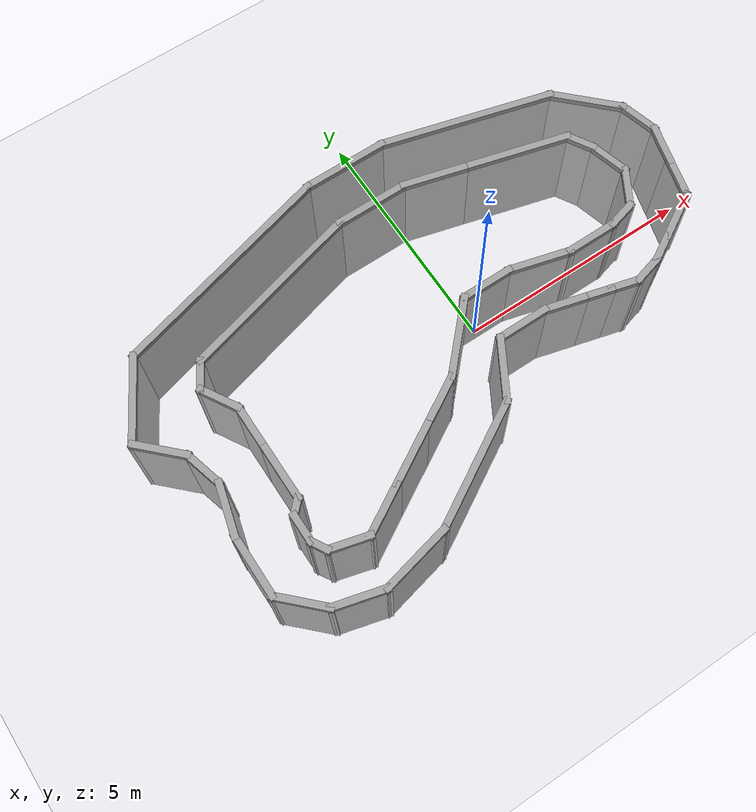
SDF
<sdf version="1.7">
 <world name="default">
  <light name="sun" type="directional">
   <pose>0 0 10 0 -0 0</pose>
   <diffuse>0.8 0.8 0.8 1</diffuse>
   <specular>0.2 0.2 0.2 1</specular>
   <attenuation>
    <range>1000</range>
    <constant>0.9</constant>
    <linear>0.01</linear>
    <quadratic>0.001</quadratic>
   </attenuation>
   <direction>-0.5 0.1 -0.9</direction>
   <spot><inner_angle>0</inner_angle><outer_angle>0</outer_angle><falloff>0</falloff></spot>
  </light>
  <model name="ground_plane">
   <static>1</static>
   <link name="link">
    <collision name="collision">
     <geometry><plane><normal>0 0 1</normal><size>100 100</size></plane></geometry>
     <surface>
      <contact><collide_bitmask>65535</collide_bitmask></contact>
      <friction><ode><mu>100</mu><mu2>50</mu2></ode></friction>
     </surface>
    </collision>
    <visual name="visual">
     <cast_shadows>0</cast_shadows>
     <geometry><plane><normal>0 0 1</normal><size>100 100</size></plane></geometry>
     <material>
      <script><uri>file://media/materials/scripts/gazebo.material</uri><name>Gazebo/Grey</name></script>
     </material>
    </visual>
   </link>
  </model>
  <gravity>0 0 -9.8</gravity>
  <magnetic_field>6e-06 2.3e-05 -4.2e-05</magnetic_field>
  <atmosphere type="adiabatic"/>
  <physics type="ode">
   <max_step_size>0.001</max_step_size>
   <real_time_factor>1</real_time_factor>
   <real_time_update_rate>1000</real_time_update_rate>
  </physics>
  <scene><ambient>0.4 0.4 0.4 1</ambient><background>0.7 0.7 0.7 1</background><shadows>1</shadows></scene>
  <spherical_coordinates>
   <surface_model>EARTH_WGS84</surface_model>
   <latitude_deg>0</latitude_deg>
   <longitude_deg>0</longitude_deg>
   <elevation>0</elevation>
   <heading_deg>0</heading_deg>
  </spherical_coordinates>
  <model name="track_ver4">
   <pose>-0.487715 0.640623 -2.37228 0 -0 0</pose>
   <link name="Wall_0">
    <collision name="Wall_0_Collision">
     <geometry><box><size>3 0.15 2.5</size></box></geometry>
     <pose>0 0 1.25 0 -0 0</pose>
    </collision>
    <visual name="Wall_0_Visual">
     <pose>0 0 1.25 0 -0 0</pose>
     <geometry><box><size>3 0.15 2.5</size></box></geometry>
     <material>
      <script><uri>file://media/materials/scripts/gazebo.material</uri><name>Gazebo/Grey</name></script>
      <ambient>1 1 1 1</ambient>
     </material>
     <meta><layer>0</layer></meta>
    </visual>
    <pose>-1.08822 -2.94927 0 0 -0 0.523599</pose>
   </link>
   <link name="Wall_1">
    <collision name="Wall_1_Collision">
     <geometry><box><size>1.5 0.15 2.5</size></box></geometry>
     <pose>0 0 1.25 0 -0 0</pose>
    </collision>
    <visual name="Wall_1_Visual">
     <pose>0 0 1.25 0 -0 0</pose>
     <geometry><box><size>1.5 0.15 2.5</size></box></geometry>
     <material>
      <script><uri>file://media/materials/scripts/gazebo.material</uri><name>Gazebo/Grey</name></script>
      <ambient>1 1 1 1</ambient>
     </material>
     <meta><layer>0</layer></meta>
    </visual>
    <pose>0.483368 -1.65221 0 0 -0 1.0472</pose>
   </link>
   <link name="Wall_10">
    <collision name="Wall_10_Collision">
     <geometry><box><size>1 0.15 2.5</size></box></geometry>
     <pose>0 0 1.25 0 -0 0</pose>
    </collision>
    <visual name="Wall_10_Visual">
     <pose>0 0 1.25 0 -0 0</pose>
     <geometry><box><size>1 0.15 2.5</size></box></geometry>
     <material>
      <script><uri>file://media/materials/scripts/gazebo.material</uri><name>Gazebo/Grey</name></script>
      <ambient>1 1 1 1</ambient>
     </material>
     <meta><layer>0</layer></meta>
    </visual>
    <pose>6.28281 0.638628 0 0 -0 1.309</pose>
   </link>
   <link name="Wall_11">
    <collision name="Wall_11_Collision">
     <geometry><box><size>1 0.15 2.5</size></box></geometry>
     <pose>0 0 1.25 0 -0 0</pose>
    </collision>
    <visual name="Wall_11_Visual">
     <pose>0 0 1.25 0 -0 0</pose>
     <geometry><box><size>1 0.15 2.5</size></box></geometry>
     <material>
      <script><uri>file://media/materials/scripts/gazebo.material</uri><name>Gazebo/Grey</name></script>
      <ambient>1 1 1 1</ambient>
     </material>
     <meta><layer>0</layer></meta>
    </visual>
    <pose>6.28281 1.45966 0 0 -0 1.8326</pose>
   </link>
   <link name="Wall_12">
    <collision name="Wall_12_Collision">
     <geometry><box><size>1.75 0.15 2.5</size></box></geometry>
     <pose>0 0 1.25 0 -0 0</pose>
    </collision>
    <visual name="Wall_12_Visual">
     <pose>0 0 1.25 0 -0 0</pose>
     <geometry><box><size>1.75 0.15 2.5</size></box></geometry>
     <material>
      <script><uri>file://media/materials/scripts/gazebo.material</uri><name>Gazebo/Grey</name></script>
      <ambient>1 1 1 1</ambient>
     </material>
     <meta><layer>0</layer></meta>
    </visual>
    <pose>5.60712 2.43587 0 0 -0 2.35619</pose>
   </link>
   <link name="Wall_13">
    <collision name="Wall_13_Collision">
     <geometry><box><size>4 0.15 2.5</size></box></geometry>
     <pose>0 0 1.25 0 -0 0</pose>
    </collision>
    <visual name="Wall_13_Visual">
     <pose>0 0 1.25 0 -0 0</pose>
     <geometry><box><size>4 0.15 2.5</size></box></geometry>
     <material>
      <script><uri>file://media/materials/scripts/gazebo.material</uri><name>Gazebo/Grey</name></script>
      <ambient>1 1 1 1</ambient>
     </material>
     <meta><layer>0</layer></meta>
    </visual>
    <pose>3.18203 3.49978 0 0 -0 2.87979</pose>
   </link>
   <link name="Wall_14">
    <collision name="Wall_14_Collision">
     <geometry><box><size>2 0.15 2.5</size></box></geometry>
     <pose>0 0 1.25 0 -0 0</pose>
    </collision>
    <visual name="Wall_14_Visual">
     <pose>0 0 1.25 0 -0 0</pose>
     <geometry><box><size>2 0.15 2.5</size></box></geometry>
     <material>
      <script><uri>file://media/materials/scripts/gazebo.material</uri><name>Gazebo/Grey</name></script>
      <ambient>1 1 1 1</ambient>
     </material>
     <meta><layer>0</layer></meta>
    </visual>
    <pose>0.397625 3.99801 0 0 -0 3.14159</pose>
   </link>
   <link name="Wall_15">
    <collision name="Wall_15_Collision">
     <geometry><box><size>5.25 0.15 2.5</size></box></geometry>
     <pose>0 0 1.25 0 -0 0</pose>
    </collision>
    <visual name="Wall_15_Visual">
     <pose>0 0 1.25 0 -0 0</pose>
     <geometry><box><size>5.25 0.15 2.5</size></box></geometry>
     <material>
      <script><uri>file://media/materials/scripts/gazebo.material</uri><name>Gazebo/Grey</name></script>
      <ambient>1 1 1 1</ambient>
     </material>
     <meta><layer>0</layer></meta>
    </visual>
    <pose>-2.99049 3.33802 0 0 -0 -2.87979</pose>
   </link>
   <link name="Wall_16">
    <collision name="Wall_16_Collision">
     <geometry><box><size>2 0.15 2.5</size></box></geometry>
     <pose>0 0 1.25 0 -0 0</pose>
    </collision>
    <visual name="Wall_16_Visual">
     <pose>0 0 1.25 0 -0 0</pose>
     <geometry><box><size>2 0.15 2.5</size></box></geometry>
     <material>
      <script><uri>file://media/materials/scripts/gazebo.material</uri><name>Gazebo/Grey</name></script>
      <ambient>1 1 1 1</ambient>
     </material>
     <meta><layer>0</layer></meta>
    </visual>
    <pose>-5.9161 1.87696 0 0 -0 -2.0944</pose>
   </link>
   <link name="Wall_17">
    <collision name="Wall_17_Collision">
     <geometry><box><size>1.25 0.15 2.5</size></box></geometry>
     <pose>0 0 1.25 0 -0 0</pose>
    </collision>
    <visual name="Wall_17_Visual">
     <pose>0 0 1.25 0 -0 0</pose>
     <geometry><box><size>1.25 0.15 2.5</size></box></geometry>
     <material>
      <script><uri>file://media/materials/scripts/gazebo.material</uri><name>Gazebo/Grey</name></script>
      <ambient>1 1 1 1</ambient>
     </material>
     <meta><layer>0</layer></meta>
    </visual>
    <pose>-5.98969 0.686975 0 0 -0 -0.785398</pose>
   </link>
   <link name="Wall_18">
    <collision name="Wall_18_Collision">
     <geometry><box><size>1 0.15 2.5</size></box></geometry>
     <pose>0 0 1.25 0 -0 0</pose>
    </collision>
    <visual name="Wall_18_Visual">
     <pose>0 0 1.25 0 -0 0</pose>
     <geometry><box><size>1 0.15 2.5</size></box></geometry>
     <material>
      <script><uri>file://media/materials/scripts/gazebo.material</uri><name>Gazebo/Grey</name></script>
      <ambient>1 1 1 1</ambient>
     </material>
     <meta><layer>0</layer></meta>
    </visual>
    <pose>-5.49078 -0.112452 0 0 -0 -1.309</pose>
   </link>
   <link name="Wall_19">
    <collision name="Wall_19_Collision">
     <geometry><box><size>1.25 0.15 2.5</size></box></geometry>
     <pose>0 0 1.25 0 -0 0</pose>
    </collision>
    <visual name="Wall_19_Visual">
     <pose>0 0 1.25 0 -0 0</pose>
     <geometry><box><size>1.25 0.15 2.5</size></box></geometry>
     <material>
      <script><uri>file://media/materials/scripts/gazebo.material</uri><name>Gazebo/Grey</name></script>
      <ambient>1 1 1 1</ambient>
     </material>
     <meta><layer>0</layer></meta>
    </visual>
    <pose>-5.52313 -1.05423 0 0 -0 -1.8326</pose>
   </link>
   <link name="Wall_2">
    <collision name="Wall_2_Collision">
     <geometry><box><size>1.25 0.15 2.5</size></box></geometry>
     <pose>0 0 1.25 0 -0 0</pose>
    </collision>
    <visual name="Wall_2_Visual">
     <pose>0 0 1.25 0 -0 0</pose>
     <geometry><box><size>1.25 0.15 2.5</size></box></geometry>
     <material>
      <script><uri>file://media/materials/scripts/gazebo.material</uri><name>Gazebo/Grey</name></script>
      <ambient>1 1 1 1</ambient>
     </material>
     <meta><layer>0</layer></meta>
    </visual>
    <pose>1.37087 -1.06764 0 0 -0 0</pose>
   </link>
   <link name="Wall_20">
    <collision name="Wall_20_Collision">
     <geometry><box><size>1.5 0.15 2.5</size></box></geometry>
     <pose>0 0 1.25 0 -0 0</pose>
    </collision>
    <visual name="Wall_20_Visual">
     <pose>0 0 1.25 0 -0 0</pose>
     <geometry><box><size>1.5 0.15 2.5</size></box></geometry>
     <material>
      <script><uri>file://media/materials/scripts/gazebo.material</uri><name>Gazebo/Grey</name></script>
      <ambient>1 1 1 1</ambient>
     </material>
     <meta><layer>0</layer></meta>
    </visual>
    <pose>-5.66548 -2.26049 0 0 -0 -1.5708</pose>
   </link>
   <link name="Wall_21">
    <collision name="Wall_21_Collision">
     <geometry><box><size>1.25 0.15 2.5</size></box></geometry>
     <pose>0 0 1.25 0 -0 0</pose>
    </collision>
    <visual name="Wall_21_Visual">
     <pose>0 0 1.25 0 -0 0</pose>
     <geometry><box><size>1.25 0.15 2.5</size></box></geometry>
     <material>
      <script><uri>file://media/materials/scripts/gazebo.material</uri><name>Gazebo/Grey</name></script>
      <ambient>1 1 1 1</ambient>
     </material>
     <meta><layer>0</layer></meta>
    </visual>
    <pose>-5.27658 -3.3244 0 0 -0 -0.785398</pose>
   </link>
   <link name="Wall_22">
    <collision name="Wall_22_Collision">
     <geometry><box><size>1.25 0.15 2.5</size></box></geometry>
     <pose>0 0 1.25 0 -0 0</pose>
    </collision>
    <visual name="Wall_22_Visual">
     <pose>0 0 1.25 0 -0 0</pose>
     <geometry><box><size>1.25 0.15 2.5</size></box></geometry>
     <material>
      <script><uri>file://media/materials/scripts/gazebo.material</uri><name>Gazebo/Grey</name></script>
      <ambient>1 1 1 1</ambient>
     </material>
     <meta><layer>0</layer></meta>
    </visual>
    <pose>-4.35641 -3.85566 0 0 -0 -0.261799</pose>
   </link>
   <link name="Wall_23">
    <collision name="Wall_23_Collision">
     <geometry><box><size>1.69 0.15 2.5</size></box></geometry>
     <pose>0 0 1.25 0 -0 0</pose>
    </collision>
    <visual name="Wall_23_Visual">
     <pose>0 0 1.25 0 -0 0</pose>
     <geometry><box><size>1.69 0.15 2.5</size></box></geometry>
     <material>
      <script><uri>file://media/materials/scripts/gazebo.material</uri><name>Gazebo/Grey</name></script>
      <ambient>1 1 1 1</ambient>
     </material>
     <meta><layer>0</layer></meta>
    </visual>
    <pose>-3.07373 -3.82989 0 0 -0 0.220107</pose>
   </link>
   <link name="Wall_26">
    <collision name="Wall_26_Collision">
     <geometry><box><size>1.25 0.15 2.5</size></box></geometry>
     <pose>0 0 1.25 0 -0 0</pose>
    </collision>
    <visual name="Wall_26_Visual">
     <pose>0 0 1.25 0 -0 0</pose>
     <geometry><box><size>1.25 0.15 2.5</size></box></geometry>
     <material>
      <script><uri>file://media/materials/scripts/gazebo.material</uri><name>Gazebo/Grey</name></script>
      <ambient>1 1 1 1</ambient>
     </material>
     <meta><layer>0</layer></meta>
    </visual>
    <pose>1.28599 0.059877 0 0 -0 0</pose>
   </link>
   <link name="Wall_27">
    <collision name="Wall_27_Collision">
     <geometry><box><size>1.5 0.15 2.5</size></box></geometry>
     <pose>0 0 1.25 0 -0 0</pose>
    </collision>
    <visual name="Wall_27_Visual">
     <pose>0 0 1.25 0 -0 0</pose>
     <geometry><box><size>1.5 0.15 2.5</size></box></geometry>
     <material>
      <script><uri>file://media/materials/scripts/gazebo.material</uri><name>Gazebo/Grey</name></script>
      <ambient>1 1 1 1</ambient>
     </material>
     <meta><layer>0</layer></meta>
    </visual>
    <pose>2.48799 -0.114825 0 0 -0 -0.261799</pose>
   </link>
   <link name="Wall_28">
    <collision name="Wall_28_Collision">
     <geometry><box><size>1.25 0.15 2.5</size></box></geometry>
     <pose>0 0 1.25 0 -0 0</pose>
    </collision>
    <visual name="Wall_28_Visual">
     <pose>0 0 1.25 0 -0 0</pose>
     <geometry><box><size>1.25 0.15 2.5</size></box></geometry>
     <material>
      <script><uri>file://media/materials/scripts/gazebo.material</uri><name>Gazebo/Grey</name></script>
      <ambient>1 1 1 1</ambient>
     </material>
     <meta><layer>0</layer></meta>
    </visual>
    <pose>3.68999 -0.289528 0 0 -0 0</pose>
   </link>
   <link name="Wall_29">
    <collision name="Wall_29_Collision">
     <geometry><box><size>0.75 0.15 2.5</size></box></geometry>
     <pose>0 0 1.25 0 -0 0</pose>
    </collision>
    <visual name="Wall_29_Visual">
     <pose>0 0 1.25 0 -0 0</pose>
     <geometry><box><size>0.75 0.15 2.5</size></box></geometry>
     <material>
      <script><uri>file://media/materials/scripts/gazebo.material</uri><name>Gazebo/Grey</name></script>
      <ambient>1 1 1 1</ambient>
     </material>
     <meta><layer>0</layer></meta>
    </visual>
    <pose>4.52977 -0.211883 0 0 -0 0.261799</pose>
   </link>
   <link name="Wall_3">
    <collision name="Wall_3_Collision">
     <geometry><box><size>1 0.15 2.5</size></box></geometry>
     <pose>0 0 1.25 0 -0 0</pose>
    </collision>
    <visual name="Wall_3_Visual">
     <pose>0 0 1.25 0 -0 0</pose>
     <geometry><box><size>1 0.15 2.5</size></box></geometry>
     <material>
      <script><uri>file://media/materials/scripts/gazebo.material</uri><name>Gazebo/Grey</name></script>
      <ambient>1 1 1 1</ambient>
     </material>
     <meta><layer>0</layer></meta>
    </visual>
    <pose>2.33139 -1.17764 0 0 -0 -0.261799</pose>
   </link>
   <link name="Wall_30">
    <collision name="Wall_30_Collision">
     <geometry><box><size>1 0.15 2.5</size></box></geometry>
     <pose>0 0 1.25 0 -0 0</pose>
    </collision>
    <visual name="Wall_30_Visual">
     <pose>0 0 1.25 0 -0 0</pose>
     <geometry><box><size>1 0.15 2.5</size></box></geometry>
     <material>
      <script><uri>file://media/materials/scripts/gazebo.material</uri><name>Gazebo/Grey</name></script>
      <ambient>1 1 1 1</ambient>
     </material>
     <meta><layer>0</layer></meta>
    </visual>
    <pose>5.03205 0.233824 0 0 -0 1.0472</pose>
   </link>
   <link name="Wall_31">
    <collision name="Wall_31_Collision">
     <geometry><box><size>1 0.15 2.5</size></box></geometry>
     <pose>0 0 1.25 0 -0 0</pose>
    </collision>
    <visual name="Wall_31_Visual">
     <pose>0 0 1.25 0 -0 0</pose>
     <geometry><box><size>1 0.15 2.5</size></box></geometry>
     <material>
      <script><uri>file://media/materials/scripts/gazebo.material</uri><name>Gazebo/Grey</name></script>
      <ambient>1 1 1 1</ambient>
     </material>
     <meta><layer>0</layer></meta>
    </visual>
    <pose>5.13455 1.0124 0 0 -0 1.8326</pose>
   </link>
   <link name="Wall_32">
    <collision name="Wall_32_Collision">
     <geometry><box><size>0.75 0.15 2.5</size></box></geometry>
     <pose>0 0 1.25 0 -0 0</pose>
    </collision>
    <visual name="Wall_32_Visual">
     <pose>0 0 1.25 0 -0 0</pose>
     <geometry><box><size>0.75 0.15 2.5</size></box></geometry>
     <material>
      <script><uri>file://media/materials/scripts/gazebo.material</uri><name>Gazebo/Grey</name></script>
      <ambient>1 1 1 1</ambient>
     </material>
     <meta><layer>0</layer></meta>
    </visual>
    <pose>4.87455 1.68273 0 0 -0 2.0944</pose>
   </link>
   <link name="Wall_33">
    <collision name="Wall_33_Collision">
     <geometry><box><size>2.5 0.15 2.5</size></box></geometry>
     <pose>0 0 1.25 0 -0 0</pose>
    </collision>
    <visual name="Wall_33_Visual">
     <pose>0 0 1.25 0 -0 0</pose>
     <geometry><box><size>2.5 0.15 2.5</size></box></geometry>
     <material>
      <script><uri>file://media/materials/scripts/gazebo.material</uri><name>Gazebo/Grey</name></script>
      <ambient>1 1 1 1</ambient>
     </material>
     <meta><layer>0</layer></meta>
    </visual>
    <pose>3.58959 2.24665 0 0 -0 2.87979</pose>
   </link>
   <link name="Wall_34">
    <collision name="Wall_34_Collision">
     <geometry><box><size>1.5 0.15 2.5</size></box></geometry>
     <pose>0 0 1.25 0 -0 0</pose>
    </collision>
    <visual name="Wall_34_Visual">
     <pose>0 0 1.25 0 -0 0</pose>
     <geometry><box><size>1.5 0.15 2.5</size></box></geometry>
     <material>
      <script><uri>file://media/materials/scripts/gazebo.material</uri><name>Gazebo/Grey</name></script>
      <ambient>1 1 1 1</ambient>
     </material>
     <meta><layer>0</layer></meta>
    </visual>
    <pose>1.80263 2.72546 0 0 -0 2.87979</pose>
   </link>
   <link name="Wall_35">
    <collision name="Wall_35_Collision">
     <geometry><box><size>1.75 0.15 2.5</size></box></geometry>
     <pose>0 0 1.25 0 -0 0</pose>
    </collision>
    <visual name="Wall_35_Visual">
     <pose>0 0 1.25 0 -0 0</pose>
     <geometry><box><size>1.75 0.15 2.5</size></box></geometry>
     <material>
      <script><uri>file://media/materials/scripts/gazebo.material</uri><name>Gazebo/Grey</name></script>
      <ambient>1 1 1 1</ambient>
     </material>
     <meta><layer>0</layer></meta>
    </visual>
    <pose>0.350626 2.90017 0 0 -0 3.14159</pose>
   </link>
   <link name="Wall_36">
    <collision name="Wall_36_Collision">
     <geometry><box><size>4.25 0.15 2.5</size></box></geometry>
     <pose>0 0 1.25 0 -0 0</pose>
    </collision>
    <visual name="Wall_36_Visual">
     <pose>0 0 1.25 0 -0 0</pose>
     <geometry><box><size>4.25 0.15 2.5</size></box></geometry>
     <material>
      <script><uri>file://media/materials/scripts/gazebo.material</uri><name>Gazebo/Grey</name></script>
      <ambient>1 1 1 1</ambient>
     </material>
     <meta><layer>0</layer></meta>
    </visual>
    <pose>-2.42952 2.36959 0 0 -0 -2.87979</pose>
   </link>
   <link name="Wall_37">
    <collision name="Wall_37_Collision">
     <geometry><box><size>0.75 0.15 2.5</size></box></geometry>
     <pose>0 0 1.25 0 -0 0</pose>
    </collision>
    <visual name="Wall_37_Visual">
     <pose>0 0 1.25 0 -0 0</pose>
     <geometry><box><size>0.75 0.15 2.5</size></box></geometry>
     <material>
      <script><uri>file://media/materials/scripts/gazebo.material</uri><name>Gazebo/Grey</name></script>
      <ambient>1 1 1 1</ambient>
     </material>
     <meta><layer>0</layer></meta>
    </visual>
    <pose>-4.55967 1.5792 0 0 -0 -2.0944</pose>
   </link>
   <link name="Wall_38">
    <collision name="Wall_38_Collision">
     <geometry><box><size>1 0.15 2.5</size></box></geometry>
     <pose>0 0 1.25 0 -0 0</pose>
    </collision>
    <visual name="Wall_38_Visual">
     <pose>0 0 1.25 0 -0 0</pose>
     <geometry><box><size>1 0.15 2.5</size></box></geometry>
     <material>
      <script><uri>file://media/materials/scripts/gazebo.material</uri><name>Gazebo/Grey</name></script>
      <ambient>1 1 1 1</ambient>
     </material>
     <meta><layer>0</layer></meta>
    </visual>
    <pose>-4.49717 0.951333 0 0 -0 -1.0472</pose>
   </link>
   <link name="Wall_39">
    <collision name="Wall_39_Collision">
     <geometry><box><size>1 0.15 2.5</size></box></geometry>
     <pose>0 0 1.25 0 -0 0</pose>
    </collision>
    <visual name="Wall_39_Visual">
     <pose>0 0 1.25 0 -0 0</pose>
     <geometry><box><size>1 0.15 2.5</size></box></geometry>
     <material>
      <script><uri>file://media/materials/scripts/gazebo.material</uri><name>Gazebo/Grey</name></script>
      <ambient>1 1 1 1</ambient>
     </material>
     <meta><layer>0</layer></meta>
    </visual>
    <pose>-4.28467 0.158272 0 0 -0 -1.5708</pose>
   </link>
   <link name="Wall_4">
    <collision name="Wall_4_Collision">
     <geometry><box><size>0.75 0.15 2.5</size></box></geometry>
     <pose>0 0 1.25 0 -0 0</pose>
    </collision>
    <visual name="Wall_4_Visual">
     <pose>0 0 1.25 0 -0 0</pose>
     <geometry><box><size>0.75 0.15 2.5</size></box></geometry>
     <material>
      <script><uri>file://media/materials/scripts/gazebo.material</uri><name>Gazebo/Grey</name></script>
      <ambient>1 1 1 1</ambient>
     </material>
     <meta><layer>0</layer></meta>
    </visual>
    <pose>3.03168 -1.36528 0 0 -0 -0.261799</pose>
   </link>
   <link name="Wall_40">
    <collision name="Wall_40_Collision">
     <geometry><box><size>1.5 0.15 2.5</size></box></geometry>
     <pose>0 0 1.25 0 -0 0</pose>
    </collision>
    <visual name="Wall_40_Visual">
     <pose>0 0 1.25 0 -0 0</pose>
     <geometry><box><size>1.5 0.15 2.5</size></box></geometry>
     <material>
      <script><uri>file://media/materials/scripts/gazebo.material</uri><name>Gazebo/Grey</name></script>
      <ambient>1 1 1 1</ambient>
     </material>
     <meta><layer>0</layer></meta>
    </visual>
    <pose>-4.28467 -0.941728 0 0 -0 -1.5708</pose>
   </link>
   <link name="Wall_41">
    <collision name="Wall_41_Collision">
     <geometry><box><size>0.5 0.15 2.5</size></box></geometry>
     <pose>0 0 1.25 0 -0 0</pose>
    </collision>
    <visual name="Wall_41_Visual">
     <pose>0 0 1.25 0 -0 0</pose>
     <geometry><box><size>0.5 0.15 2.5</size></box></geometry>
     <material>
      <script><uri>file://media/materials/scripts/gazebo.material</uri><name>Gazebo/Grey</name></script>
      <ambient>1 1 1 1</ambient>
     </material>
     <meta><layer>0</layer></meta>
    </visual>
    <pose>-4.40841 -1.74047 0 0 -0 -2.35619</pose>
   </link>
   <link name="Wall_42">
    <collision name="Wall_42_Collision">
     <geometry><box><size>0.75 0.15 2.5</size></box></geometry>
     <pose>0 0 1.25 0 -0 0</pose>
    </collision>
    <visual name="Wall_42_Visual">
     <pose>0 0 1.25 0 -0 0</pose>
     <geometry><box><size>0.75 0.15 2.5</size></box></geometry>
     <material>
      <script><uri>file://media/materials/scripts/gazebo.material</uri><name>Gazebo/Grey</name></script>
      <ambient>1 1 1 1</ambient>
     </material>
     <meta><layer>0</layer></meta>
    </visual>
    <pose>-4.53216 -2.16421 0 0 -0 -1.5708</pose>
   </link>
   <link name="Wall_43">
    <collision name="Wall_43_Collision">
     <geometry><box><size>0.5 0.15 2.5</size></box></geometry>
     <pose>0 0 1.25 0 -0 0</pose>
    </collision>
    <visual name="Wall_43_Visual">
     <pose>0 0 1.25 0 -0 0</pose>
     <geometry><box><size>0.5 0.15 2.5</size></box></geometry>
     <material>
      <script><uri>file://media/materials/scripts/gazebo.material</uri><name>Gazebo/Grey</name></script>
      <ambient>1 1 1 1</ambient>
     </material>
     <meta><layer>0</layer></meta>
    </visual>
    <pose>-4.44466 -2.61577 0 0 -0 -1.0472</pose>
   </link>
   <link name="Wall_44">
    <collision name="Wall_44_Collision">
     <geometry><box><size>1 0.15 2.5</size></box></geometry>
     <pose>0 0 1.25 0 -0 0</pose>
    </collision>
    <visual name="Wall_44_Visual">
     <pose>0 0 1.25 0 -0 0</pose>
     <geometry><box><size>1 0.15 2.5</size></box></geometry>
     <material>
      <script><uri>file://media/materials/scripts/gazebo.material</uri><name>Gazebo/Grey</name></script>
      <ambient>1 1 1 1</ambient>
     </material>
     <meta><layer>0</layer></meta>
    </visual>
    <pose>-3.94664 -2.87732 0 0 -0 -0.261799</pose>
   </link>
   <link name="Wall_45">
    <collision name="Wall_45_Collision">
     <geometry><box><size>1.25 0.15 2.5</size></box></geometry>
     <pose>0 0 1.25 0 -0 0</pose>
    </collision>
    <visual name="Wall_45_Visual">
     <pose>0 0 1.25 0 -0 0</pose>
     <geometry><box><size>1.25 0.15 2.5</size></box></geometry>
     <material>
      <script><uri>file://media/materials/scripts/gazebo.material</uri><name>Gazebo/Grey</name></script>
      <ambient>1 1 1 1</ambient>
     </material>
     <meta><layer>0</layer></meta>
    </visual>
    <pose>-3.05981 -2.71232 0 0 -0 0.523599</pose>
   </link>
   <link name="Wall_46">
    <collision name="Wall_46_Collision">
     <geometry><box><size>1.5 0.15 2.5</size></box></geometry>
     <pose>0 0 1.25 0 -0 0</pose>
    </collision>
    <visual name="Wall_46_Visual">
     <pose>0 0 1.25 0 -0 0</pose>
     <geometry><box><size>1.5 0.15 2.5</size></box></geometry>
     <material>
      <script><uri>file://media/materials/scripts/gazebo.material</uri><name>Gazebo/Grey</name></script>
      <ambient>1 1 1 1</ambient>
     </material>
     <meta><layer>0</layer></meta>
    </visual>
    <pose>-1.99893 -2.09982 0 0 -0 0.523599</pose>
   </link>
   <link name="Wall_47">
    <collision name="Wall_47_Collision">
     <geometry><box><size>1.25 0.15 2.5</size></box></geometry>
     <pose>0 0 1.25 0 -0 0</pose>
    </collision>
    <visual name="Wall_47_Visual">
     <pose>0 0 1.25 0 -0 0</pose>
     <geometry><box><size>1.25 0.15 2.5</size></box></geometry>
     <material>
      <script><uri>file://media/materials/scripts/gazebo.material</uri><name>Gazebo/Grey</name></script>
      <ambient>1 1 1 1</ambient>
     </material>
     <meta><layer>0</layer></meta>
    </visual>
    <pose>-0.938044 -1.48732 0 0 -0 0.523599</pose>
   </link>
   <link name="Wall_48">
    <collision name="Wall_48_Collision">
     <geometry><box><size>1.89729 0.15 2.5</size></box></geometry>
     <pose>0 0 1.25 0 -0 0</pose>
    </collision>
    <visual name="Wall_48_Visual">
     <pose>0 0 1.25 0 -0 0</pose>
     <geometry><box><size>1.89729 0.15 2.5</size></box></geometry>
     <material>
      <script><uri>file://media/materials/scripts/gazebo.material</uri><name>Gazebo/Grey</name></script>
      <ambient>1 1 1 1</ambient>
     </material>
     <meta><layer>0</layer></meta>
    </visual>
    <pose>0.137131 -0.576221 0 0 -0 0.815542</pose>
   </link>
   <link name="Wall_5">
    <collision name="Wall_5_Collision">
     <geometry><box><size>0.75 0.15 2.5</size></box></geometry>
     <pose>0 0 1.25 0 -0 0</pose>
    </collision>
    <visual name="Wall_5_Visual">
     <pose>0 0 1.25 0 -0 0</pose>
     <geometry><box><size>0.75 0.15 2.5</size></box></geometry>
     <material>
      <script><uri>file://media/materials/scripts/gazebo.material</uri><name>Gazebo/Grey</name></script>
      <ambient>1 1 1 1</ambient>
     </material>
     <meta><layer>0</layer></meta>
    </visual>
    <pose>3.61124 -1.52057 0 0 -0 -0.261799</pose>
   </link>
   <link name="Wall_6">
    <collision name="Wall_6_Collision">
     <geometry><box><size>0.75 0.15 2.5</size></box></geometry>
     <pose>0 0 1.25 0 -0 0</pose>
    </collision>
    <visual name="Wall_6_Visual">
     <pose>0 0 1.25 0 -0 0</pose>
     <geometry><box><size>0.75 0.15 2.5</size></box></geometry>
     <material>
      <script><uri>file://media/materials/scripts/gazebo.material</uri><name>Gazebo/Grey</name></script>
      <ambient>1 1 1 1</ambient>
     </material>
     <meta><layer>0</layer></meta>
    </visual>
    <pose>4.19079 -1.52057 0 0 -0 0.261799</pose>
   </link>
   <link name="Wall_7">
    <collision name="Wall_7_Collision">
     <geometry><box><size>0.75 0.15 2.5</size></box></geometry>
     <pose>0 0 1.25 0 -0 0</pose>
    </collision>
    <visual name="Wall_7_Visual">
     <pose>0 0 1.25 0 -0 0</pose>
     <geometry><box><size>0.75 0.15 2.5</size></box></geometry>
     <material>
      <script><uri>file://media/materials/scripts/gazebo.material</uri><name>Gazebo/Grey</name></script>
      <ambient>1 1 1 1</ambient>
     </material>
     <meta><layer>0</layer></meta>
    </visual>
    <pose>4.74038 -1.29293 0 0 -0 0.523599</pose>
   </link>
   <link name="Wall_8">
    <collision name="Wall_8_Collision">
     <geometry><box><size>1.25 0.15 2.5</size></box></geometry>
     <pose>0 0 1.25 0 -0 0</pose>
    </collision>
    <visual name="Wall_8_Visual">
     <pose>0 0 1.25 0 -0 0</pose>
     <geometry><box><size>1.25 0.15 2.5</size></box></geometry>
     <material>
      <script><uri>file://media/materials/scripts/gazebo.material</uri><name>Gazebo/Grey</name></script>
      <ambient>1 1 1 1</ambient>
     </material>
     <meta><layer>0</layer></meta>
    </visual>
    <pose>5.4765 -0.867927 0 0 -0 0.523599</pose>
   </link>
   <link name="Wall_9">
    <collision name="Wall_9_Collision">
     <geometry><box><size>1 0.15 2.5</size></box></geometry>
     <pose>0 0 1.25 0 -0 0</pose>
    </collision>
    <visual name="Wall_9_Visual">
     <pose>0 0 1.25 0 -0 0</pose>
     <geometry><box><size>1 0.15 2.5</size></box></geometry>
     <material>
      <script><uri>file://media/materials/scripts/gazebo.material</uri><name>Gazebo/Grey</name></script>
      <ambient>1 1 1 1</ambient>
     </material>
     <meta><layer>0</layer></meta>
    </visual>
    <pose>6.06281 -0.182409 0 0 -0 1.309</pose>
   </link>
   <static>1</static>
  </model>
 </world>
</sdf>
